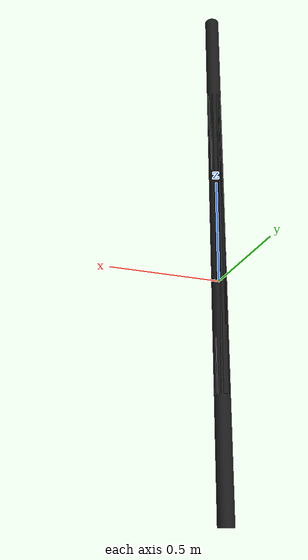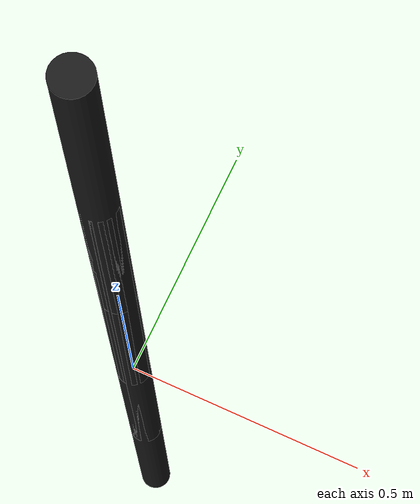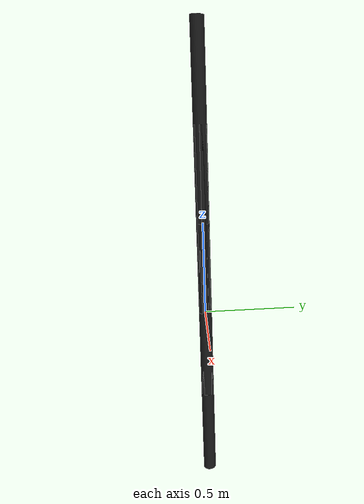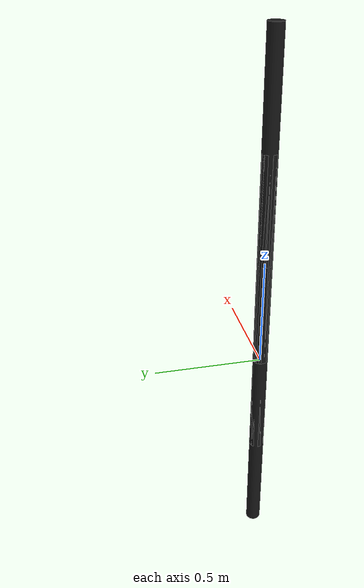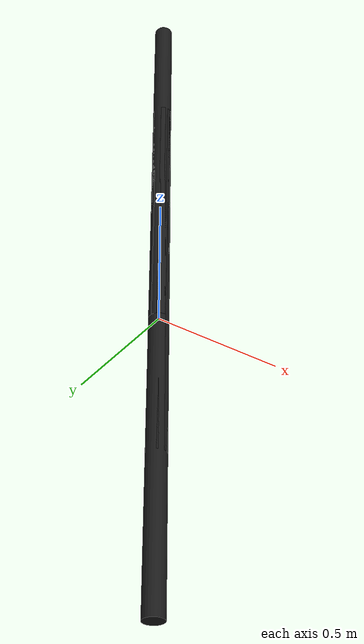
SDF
<?xml version="1.0" ?>
<sdf version="1.6">
  <model name="chain_10m">

    <include>
      <pose>0 0 0 0 0 0</pose>
      <uri>model://chain_1m</uri>
      <name>chain0</name>
    </include>

    <include>
      <pose>0 0 1 0 0 0</pose>
      <pose relative_to="joint1">0 0 0.5 0 0 0</pose>
      <uri>model://chain_1m</uri>
      <name>chain1</name>
    </include>

    <include>
      <pose relative_to="joint2">0 0 0.5 0 0 0</pose>
      <uri>model://chain_1m</uri>
      <name>chain2</name>
    </include>

    <include>
      <pose relative_to="joint3">0 0 0.5 0 0 0</pose>
      <uri>model://chain_1m</uri>
      <name>chain3</name>
    </include>

    <include>
      <pose relative_to="joint4">0 0 0.5 0 0 0</pose>
      <uri>model://chain_1m</uri>
      <name>chain4</name>
    </include>

    <include>
      <pose relative_to="joint5">0 0 0.5 0 0 0</pose>
      <uri>model://chain_1m</uri>
      <name>chain5</name>
    </include>

    <include>
      <pose relative_to="joint6">0 0 -0.5 0 3.141592 0</pose>
      <uri>model://chain_1m</uri>
      <name>chain6</name>
    </include>

    <include>
      <pose relative_to="joint7">0 0 -0.5 0 3.141592 0</pose>
      <uri>model://chain_1m</uri>
      <name>chain7</name>
    </include>

    <include>
      <pose relative_to="joint8">0 0 -0.5 0 3.141592 0</pose>
      <uri>model://chain_1m</uri>
      <name>chain8</name>
    </include>

    <include>
      <pose relative_to="joint9">0 0 -0.5 0 3.141592 0</pose>
      <uri>model://chain_1m</uri>
      <name>chain9</name>
    </include>

    <joint type="universal" name="joint1">
      <pose relative_to="chain0::base_link">0 0 0.5 0 0 0</pose>
      <parent>chain0::base_link</parent>
      <child>chain1::base_link</child>
      <axis>
        <xyz>0 1 0</xyz>
        <limit>
          <lower>-3.141592</lower>
          <upper>3.141592</upper>
        </limit>
        <dynamics>
          <damping>1.0</damping>
        </dynamics>
      </axis>
      <axis2>
        <xyz>0 0 1</xyz>
        <limit>
          <lower>-3.141592</lower>
          <upper>3.141592</upper>
        </limit>
        <dynamics>
          <damping>1.0</damping>
        </dynamics>
      </axis2>
      <physics>
        <ode>
          <cfm>10</cfm>
          <erp>0.0</erp>
        </ode>
      </physics>
    </joint>

    <joint type="universal" name="joint2">
      <pose relative_to="chain1::base_link">0 0 0.5 0 0 0</pose>
      <parent>chain1::base_link</parent>
      <child>chain2::base_link</child>
      <axis>
        <xyz>0 1 0</xyz>
        <limit>
          <lower>-3.141592</lower>
          <upper>3.141592</upper>
        </limit>
        <dynamics>
          <damping>1.0</damping>
        </dynamics>
      </axis>
      <axis2>
        <xyz>0 0 1</xyz>
        <limit>
          <lower>-3.141592</lower>
          <upper>3.141592</upper>
        </limit>
        <dynamics>
          <damping>1.0</damping>
        </dynamics>
      </axis2>
      <physics>
        <ode>
          <cfm>10</cfm>
          <erp>0.0</erp>
        </ode>
      </physics>
    </joint>

    <joint type="universal" name="joint3">
      <pose relative_to="chain2::base_link">0 0 0.5 0 0 0</pose>
      <parent>chain2::base_link</parent>
      <child>chain3::base_link</child>
      <axis>
        <xyz>0 1 0</xyz>
        <limit>
          <lower>-3.141592</lower>
          <upper>3.141592</upper>
        </limit>
        <dynamics>
          <damping>1.0</damping>
        </dynamics>
      </axis>
      <axis2>
        <xyz>0 0 1</xyz>
        <limit>
          <lower>-3.141592</lower>
          <upper>3.141592</upper>
        </limit>
        <dynamics>
          <damping>1.0</damping>
        </dynamics>
      </axis2>
      <physics>
        <ode>
          <cfm>10</cfm>
          <erp>0.0</erp>
        </ode>
      </physics>
    </joint>

    <joint type="universal" name="joint4">
      <pose relative_to="chain3::base_link">0 0 0.5 0 0 0</pose>
      <parent>chain3::base_link</parent>
      <child>chain4::base_link</child>
      <axis>
        <xyz>0 1 0</xyz>
        <limit>
          <lower>-3.141592</lower>
          <upper>3.141592</upper>
        </limit>
        <dynamics>
          <damping>1.0</damping>
        </dynamics>
      </axis>
      <axis2>
        <xyz>0 0 1</xyz>
        <limit>
          <lower>-3.141592</lower>
          <upper>3.141592</upper>
        </limit>
        <dynamics>
          <damping>1.0</damping>
        </dynamics>
      </axis2>
      <physics>
        <ode>
          <cfm>10</cfm>
          <erp>0.0</erp>
        </ode>
      </physics>
    </joint>

    <joint type="universal" name="joint5">
      <pose relative_to="chain4::base_link">0 0 0.5 0 0 0</pose>
      <parent>chain4::base_link</parent>
      <child>chain5::base_link</child>
      <axis>
        <xyz>0 1 0</xyz>
        <limit>
          <lower>-3.141592</lower>
          <upper>3.141592</upper>
        </limit>
        <dynamics>
          <damping>1.0</damping>
        </dynamics>
      </axis>
      <axis2>
        <xyz>0 0 1</xyz>
        <limit>
          <lower>-3.141592</lower>
          <upper>3.141592</upper>
        </limit>
        <dynamics>
          <damping>1.0</damping>
        </dynamics>
      </axis2>
      <physics>
        <ode>
          <cfm>10</cfm>
          <erp>0.0</erp>
        </ode>
      </physics>
    </joint>

    <joint type="universal" name="joint6">
      <pose relative_to="chain5::base_link">0 0 0.5 0 0 0</pose>
      <parent>chain5::base_link</parent>
      <child>chain6::base_link</child>
      <axis>
        <xyz>0 1 0</xyz>
        <limit>
          <lower>-3.141592</lower>
          <upper>3.141592</upper>
        </limit>
        <dynamics>
          <damping>1.0</damping>
        </dynamics>
      </axis>
      <axis2>
        <xyz>0 0 1</xyz>
        <limit>
          <lower>-3.141592</lower>
          <upper>3.141592</upper>
        </limit>
        <dynamics>
          <damping>1.0</damping>
        </dynamics>
      </axis2>
      <physics>
        <ode>
          <cfm>10</cfm>
          <erp>0.0</erp>
        </ode>
      </physics>
    </joint>

    <joint type="universal" name="joint7">
      <pose relative_to="chain6::base_link">0 0 0.5 0 0 0</pose>
      <parent>chain6::base_link</parent>
      <child>chain7::base_link</child>
      <axis>
        <xyz>0 1 0</xyz>
        <limit>
          <lower>-3.141592</lower>
          <upper>3.141592</upper>
        </limit>
        <dynamics>
          <damping>1.0</damping>
        </dynamics>
      </axis>
      <axis2>
        <xyz>0 0 1</xyz>
        <limit>
          <lower>-3.141592</lower>
          <upper>3.141592</upper>
        </limit>
        <dynamics>
          <damping>1.0</damping>
        </dynamics>
      </axis2>
      <physics>
        <ode>
          <cfm>10</cfm>
          <erp>0.0</erp>
        </ode>
      </physics>
    </joint>

    <joint type="universal" name="joint8">
      <pose relative_to="chain7::base_link">0 0 0.5 0 0 0</pose>
      <parent>chain7::base_link</parent>
      <child>chain8::base_link</child>
      <axis>
        <xyz>0 1 0</xyz>
        <limit>
          <lower>-3.141592</lower>
          <upper>3.141592</upper>
        </limit>
        <dynamics>
          <damping>1.0</damping>
        </dynamics>
      </axis>
      <axis2>
        <xyz>0 0 1</xyz>
        <limit>
          <lower>-3.141592</lower>
          <upper>3.141592</upper>
        </limit>
        <dynamics>
          <damping>1.0</damping>
        </dynamics>
      </axis2>
      <physics>
        <ode>
          <cfm>10</cfm>
          <erp>0.0</erp>
        </ode>
      </physics>
    </joint>

    <joint type="universal" name="joint9">
      <pose relative_to="chain8::base_link">0 0 0.5 0 0 0</pose>
      <parent>chain8::base_link</parent>
      <child>chain9::base_link</child>
      <axis>
        <xyz>0 1 0</xyz>
        <limit>
          <lower>-3.141592</lower>
          <upper>3.141592</upper>
        </limit>
        <dynamics>
          <damping>1.0</damping>
        </dynamics>
      </axis>
      <axis2>
        <xyz>0 0 1</xyz>
        <limit>
          <lower>-3.141592</lower>
          <upper>3.141592</upper>
        </limit>
        <dynamics>
          <damping>1.0</damping>
        </dynamics>
      </axis2>
      <physics>
        <ode>
          <cfm>10</cfm>
          <erp>0.0</erp>
        </ode>
      </physics>
    </joint>

  </model>
</sdf>

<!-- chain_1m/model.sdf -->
<sdf version="1.6">
  <model name="chain_1m">
    <link name="base_link">
      <visual name="visual">
        <geometry>
          <cylinder>
            <radius>0.035</radius>
            <length>1.0</length>
          </cylinder>
        </geometry>
        <material>
          <ambient>0.1 0.1 0.1 1.0</ambient>
          <diffuse>0.1 0.1 0.1 1.0</diffuse>
          <specular>0.1 0.1 0.1 1.0</specular>
        </material>
      </visual>
      <collision name="collision">
        <geometry>
          <cylinder>
            <radius>0.035</radius>
            <length>1.0</length>
          </cylinder>
        </geometry>
      </collision>
      <inertial>
        <mass>908</mass>
        <inertia>
          <ixx>81.9667917</ixx>
          <ixy>0.0</ixy>
          <ixz>0.0</ixz>
          <iyy>81.9667917</iyy>
          <iyz>0.0</iyz>
          <izz>0.60025</izz>
        </inertia>
      </inertial>
    </link>
  </model>
</sdf>
